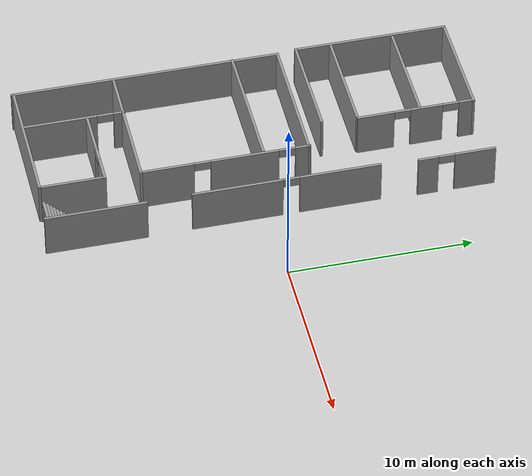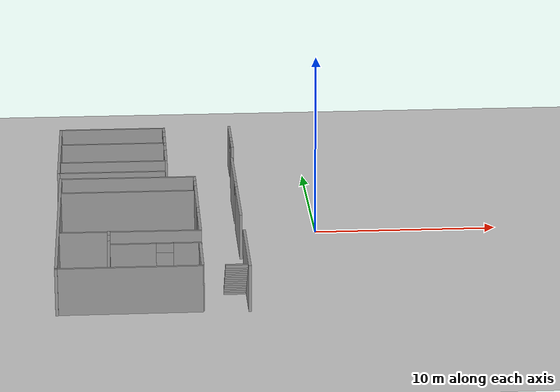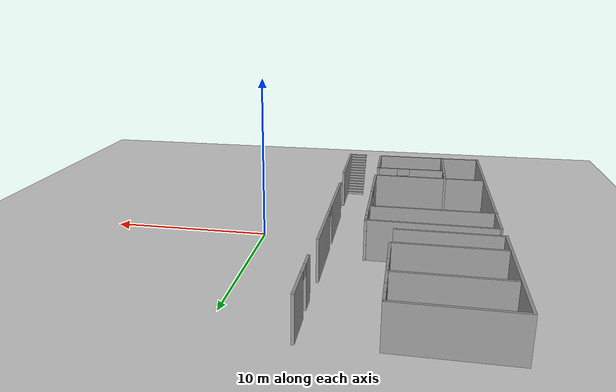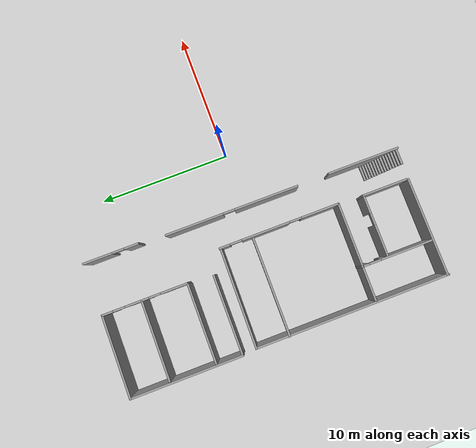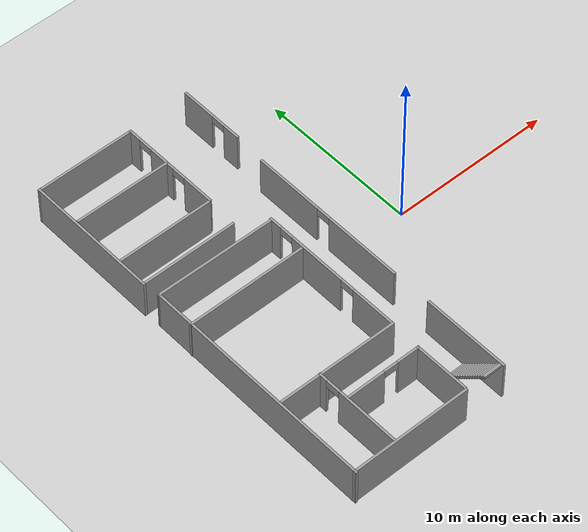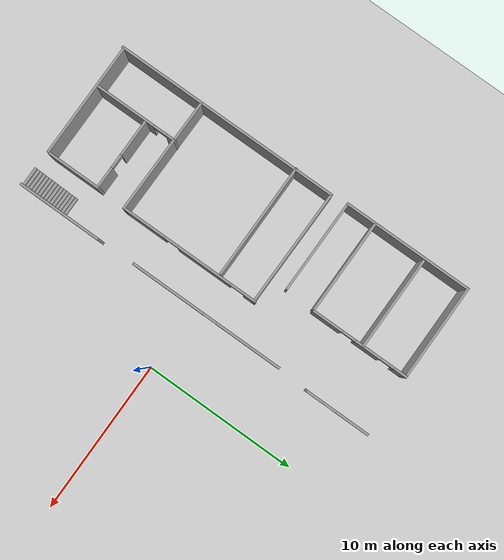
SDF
<sdf version="1.7">
 <world name="IUH">
  <model name="ground_plane">
   <static>1</static>
   <link name="link">
    <collision name="collision">
     <geometry><plane><normal>0 0 1</normal><size>100 100</size></plane></geometry>
     <surface><friction><ode><mu>100</mu><mu2>50</mu2></ode></friction></surface>
    </collision>
    <visual name="visual">
     <cast_shadows>0</cast_shadows>
     <geometry><plane><normal>0 0 1</normal><size>100 100</size></plane></geometry>
     <material>
      <script><uri>file://media/materials/scripts/gazebo.material</uri><name>Gazebo/Grey</name></script>
     </material>
    </visual>
   </link>
  </model>
  <model name="X7-IUH">
   <pose>-1.71813 0.153741 0 0 -0 0</pose>
   <link name="Stairs_2">
    <visual name="Stairs_2_Visual_0">
     <pose>-3.2544 -9.56392 0.083333 0 -0 0</pose>
     <geometry><box><size>1.15295 0.172153 0.166667</size></box></geometry>
     <material>
      <script><uri>file://media/materials/scripts/gazebo.material</uri><name>Gazebo/Grey</name></script>
      <ambient>1 1 1 1</ambient>
     </material>
     <meta><layer>0</layer></meta>
    </visual>
    <collision name="Stairs_2_Collision_0">
     <geometry><box><size>1.15295 0.172153 0.166667</size></box></geometry>
     <pose>-3.2544 -9.56392 0.083333 0 -0 0</pose>
    </collision>
    <visual name="Stairs_2_Visual_1">
     <pose>-3.2544 -9.73607 0.25 0 -0 0</pose>
     <geometry><box><size>1.15295 0.172153 0.166667</size></box></geometry>
     <material>
      <script><uri>file://media/materials/scripts/gazebo.material</uri><name>Gazebo/Grey</name></script>
      <ambient>1 1 1 1</ambient>
     </material>
     <meta><layer>0</layer></meta>
    </visual>
    <collision name="Stairs_2_Collision_1">
     <geometry><box><size>1.15295 0.172153 0.166667</size></box></geometry>
     <pose>-3.2544 -9.73607 0.25 0 -0 0</pose>
    </collision>
    <visual name="Stairs_2_Visual_2">
     <pose>-3.2544 -9.90822 0.416667 0 -0 0</pose>
     <geometry><box><size>1.15295 0.172153 0.166667</size></box></geometry>
     <material>
      <script><uri>file://media/materials/scripts/gazebo.material</uri><name>Gazebo/Grey</name></script>
      <ambient>1 1 1 1</ambient>
     </material>
     <meta><layer>0</layer></meta>
    </visual>
    <collision name="Stairs_2_Collision_2">
     <geometry><box><size>1.15295 0.172153 0.166667</size></box></geometry>
     <pose>-3.2544 -9.90822 0.416667 0 -0 0</pose>
    </collision>
    <visual name="Stairs_2_Visual_3">
     <pose>-3.2544 -10.0804 0.583333 0 -0 0</pose>
     <geometry><box><size>1.15295 0.172153 0.166667</size></box></geometry>
     <material>
      <script><uri>file://media/materials/scripts/gazebo.material</uri><name>Gazebo/Grey</name></script>
      <ambient>1 1 1 1</ambient>
     </material>
     <meta><layer>0</layer></meta>
    </visual>
    <collision name="Stairs_2_Collision_3">
     <geometry><box><size>1.15295 0.172153 0.166667</size></box></geometry>
     <pose>-3.2544 -10.0804 0.583333 0 -0 0</pose>
    </collision>
    <visual name="Stairs_2_Visual_4">
     <pose>-3.2544 -10.2525 0.75 0 -0 0</pose>
     <geometry><box><size>1.15295 0.172153 0.166667</size></box></geometry>
     <material>
      <script><uri>file://media/materials/scripts/gazebo.material</uri><name>Gazebo/Grey</name></script>
      <ambient>1 1 1 1</ambient>
     </material>
     <meta><layer>0</layer></meta>
    </visual>
    <collision name="Stairs_2_Collision_4">
     <geometry><box><size>1.15295 0.172153 0.166667</size></box></geometry>
     <pose>-3.2544 -10.2525 0.75 0 -0 0</pose>
    </collision>
    <visual name="Stairs_2_Visual_5">
     <pose>-3.2544 -10.4247 0.916667 0 -0 0</pose>
     <geometry><box><size>1.15295 0.172153 0.166667</size></box></geometry>
     <material>
      <script><uri>file://media/materials/scripts/gazebo.material</uri><name>Gazebo/Grey</name></script>
      <ambient>1 1 1 1</ambient>
     </material>
     <meta><layer>0</layer></meta>
    </visual>
    <collision name="Stairs_2_Collision_5">
     <geometry><box><size>1.15295 0.172153 0.166667</size></box></geometry>
     <pose>-3.2544 -10.4247 0.916667 0 -0 0</pose>
    </collision>
    <visual name="Stairs_2_Visual_6">
     <pose>-3.2544 -10.5968 1.08333 0 -0 0</pose>
     <geometry><box><size>1.15295 0.172153 0.166667</size></box></geometry>
     <material>
      <script><uri>file://media/materials/scripts/gazebo.material</uri><name>Gazebo/Grey</name></script>
      <ambient>1 1 1 1</ambient>
     </material>
     <meta><layer>0</layer></meta>
    </visual>
    <collision name="Stairs_2_Collision_6">
     <geometry><box><size>1.15295 0.172153 0.166667</size></box></geometry>
     <pose>-3.2544 -10.5968 1.08333 0 -0 0</pose>
    </collision>
    <visual name="Stairs_2_Visual_7">
     <pose>-3.2544 -10.769 1.25 0 -0 0</pose>
     <geometry><box><size>1.15295 0.172153 0.166667</size></box></geometry>
     <material>
      <script><uri>file://media/materials/scripts/gazebo.material</uri><name>Gazebo/Grey</name></script>
      <ambient>1 1 1 1</ambient>
     </material>
     <meta><layer>0</layer></meta>
    </visual>
    <collision name="Stairs_2_Collision_7">
     <geometry><box><size>1.15295 0.172153 0.166667</size></box></geometry>
     <pose>-3.2544 -10.769 1.25 0 -0 0</pose>
    </collision>
    <visual name="Stairs_2_Visual_8">
     <pose>-3.2544 -10.9411 1.41667 0 -0 0</pose>
     <geometry><box><size>1.15295 0.172153 0.166667</size></box></geometry>
     <material>
      <script><uri>file://media/materials/scripts/gazebo.material</uri><name>Gazebo/Grey</name></script>
      <ambient>1 1 1 1</ambient>
     </material>
     <meta><layer>0</layer></meta>
    </visual>
    <collision name="Stairs_2_Collision_8">
     <geometry><box><size>1.15295 0.172153 0.166667</size></box></geometry>
     <pose>-3.2544 -10.9411 1.41667 0 -0 0</pose>
    </collision>
    <visual name="Stairs_2_Visual_9">
     <pose>-3.2544 -11.1133 1.58333 0 -0 0</pose>
     <geometry><box><size>1.15295 0.172153 0.166667</size></box></geometry>
     <material>
      <script><uri>file://media/materials/scripts/gazebo.material</uri><name>Gazebo/Grey</name></script>
      <ambient>1 1 1 1</ambient>
     </material>
     <meta><layer>0</layer></meta>
    </visual>
    <collision name="Stairs_2_Collision_9">
     <geometry><box><size>1.15295 0.172153 0.166667</size></box></geometry>
     <pose>-3.2544 -11.1133 1.58333 0 -0 0</pose>
    </collision>
    <visual name="Stairs_2_Visual_10">
     <pose>-3.2544 -11.2854 1.75 0 -0 0</pose>
     <geometry><box><size>1.15295 0.172153 0.166667</size></box></geometry>
     <material>
      <script><uri>file://media/materials/scripts/gazebo.material</uri><name>Gazebo/Grey</name></script>
      <ambient>1 1 1 1</ambient>
     </material>
     <meta><layer>0</layer></meta>
    </visual>
    <collision name="Stairs_2_Collision_10">
     <geometry><box><size>1.15295 0.172153 0.166667</size></box></geometry>
     <pose>-3.2544 -11.2854 1.75 0 -0 0</pose>
    </collision>
    <visual name="Stairs_2_Visual_11">
     <pose>-3.2544 -11.4576 1.91667 0 -0 0</pose>
     <geometry><box><size>1.15295 0.172153 0.166667</size></box></geometry>
     <material>
      <script><uri>file://media/materials/scripts/gazebo.material</uri><name>Gazebo/Grey</name></script>
      <ambient>1 1 1 1</ambient>
     </material>
     <meta><layer>0</layer></meta>
    </visual>
    <collision name="Stairs_2_Collision_11">
     <geometry><box><size>1.15295 0.172153 0.166667</size></box></geometry>
     <pose>-3.2544 -11.4576 1.91667 0 -0 0</pose>
    </collision>
    <visual name="Stairs_2_Visual_12">
     <pose>-3.2544 -11.6298 2.08333 0 -0 0</pose>
     <geometry><box><size>1.15295 0.172153 0.166667</size></box></geometry>
     <material>
      <script><uri>file://media/materials/scripts/gazebo.material</uri><name>Gazebo/Grey</name></script>
      <ambient>1 1 1 1</ambient>
     </material>
     <meta><layer>0</layer></meta>
    </visual>
    <collision name="Stairs_2_Collision_12">
     <geometry><box><size>1.15295 0.172153 0.166667</size></box></geometry>
     <pose>-3.2544 -11.6298 2.08333 0 -0 0</pose>
    </collision>
    <visual name="Stairs_2_Visual_13">
     <pose>-3.2544 -11.8019 2.25 0 -0 0</pose>
     <geometry><box><size>1.15295 0.172153 0.166667</size></box></geometry>
     <material>
      <script><uri>file://media/materials/scripts/gazebo.material</uri><name>Gazebo/Grey</name></script>
      <ambient>1 1 1 1</ambient>
     </material>
     <meta><layer>0</layer></meta>
    </visual>
    <collision name="Stairs_2_Collision_13">
     <geometry><box><size>1.15295 0.172153 0.166667</size></box></geometry>
     <pose>-3.2544 -11.8019 2.25 0 -0 0</pose>
    </collision>
    <visual name="Stairs_2_Visual_14">
     <pose>-3.2544 -11.9741 2.41667 0 -0 0</pose>
     <geometry><box><size>1.15295 0.172153 0.166667</size></box></geometry>
     <material>
      <script><uri>file://media/materials/scripts/gazebo.material</uri><name>Gazebo/Grey</name></script>
      <ambient>1 1 1 1</ambient>
     </material>
     <meta><layer>0</layer></meta>
    </visual>
    <collision name="Stairs_2_Collision_14">
     <geometry><box><size>1.15295 0.172153 0.166667</size></box></geometry>
     <pose>-3.2544 -11.9741 2.41667 0 -0 0</pose>
    </collision>
   </link>
   <link name="Wall_11">
    <collision name="Wall_11_Collision">
     <geometry><box><size>7.5422 0.15 2.5</size></box></geometry>
     <pose>0 0 1.25 0 -0 0</pose>
    </collision>
    <visual name="Wall_11_Visual">
     <pose>0 0 1.25 0 -0 0</pose>
     <geometry><box><size>7.5422 0.15 2.5</size></box></geometry>
     <material>
      <script><uri>file://media/materials/scripts/gazebo.material</uri><name>Gazebo/Grey</name></script>
      <ambient>1 1 1 1</ambient>
     </material>
     <meta><layer>0</layer></meta>
    </visual>
    <pose>-8.59423 -6.52745 0 0 -0 3.13435</pose>
   </link>
   <link name="Wall_13">
    <collision name="Wall_13_Collision">
     <geometry><box><size>14.802 0.15 2.5</size></box></geometry>
     <pose>0 0 1.25 0 -0 0</pose>
    </collision>
    <visual name="Wall_13_Visual">
     <pose>0 0 1.25 0 -0 0</pose>
     <geometry><box><size>14.802 0.15 2.5</size></box></geometry>
     <material>
      <script><uri>file://media/materials/scripts/gazebo.material</uri><name>Gazebo/Grey</name></script>
      <ambient>1 1 1 1</ambient>
     </material>
     <meta><layer>0</layer></meta>
    </visual>
    <pose>-12.3813 -4.71947 0 0 -0 1.5708</pose>
   </link>
   <link name="Wall_15">
    <collision name="Wall_15_Collision">
     <geometry><box><size>7.63345 0.15 2.5</size></box></geometry>
     <pose>0 0 1.25 0 -0 0</pose>
    </collision>
    <visual name="Wall_15_Visual">
     <pose>0 0 1.25 0 -0 0</pose>
     <geometry><box><size>7.63345 0.15 2.5</size></box></geometry>
     <material>
      <script><uri>file://media/materials/scripts/gazebo.material</uri><name>Gazebo/Grey</name></script>
      <ambient>1 1 1 1</ambient>
     </material>
     <meta><layer>0</layer></meta>
    </visual>
    <pose>-8.63991 2.57615 0 0 -0 3.13348</pose>
   </link>
   <link name="Wall_17">
    <collision name="Wall_17_Collision">
     <geometry><box><size>7.5 0.15 2.5</size></box></geometry>
     <pose>0 0 1.25 0 -0 0</pose>
    </collision>
    <visual name="Wall_17_Visual">
     <pose>0 0 1.25 0 -0 0</pose>
     <geometry><box><size>7.5 0.15 2.5</size></box></geometry>
     <material>
      <script><uri>file://media/materials/scripts/gazebo.material</uri><name>Gazebo/Grey</name></script>
      <ambient>1 1 1 1</ambient>
     </material>
     <meta><layer>0</layer></meta>
    </visual>
    <pose>-8.74645 0.104362 0 0 -0 3.14159</pose>
   </link>
   <link name="Wall_21">
    <collision name="Wall_21_Collision">
     <geometry><box><size>6.02363 0.15 2.5</size></box></geometry>
     <pose>0 0 1.25 0 -0 0</pose>
    </collision>
    <visual name="Wall_21_Visual">
     <pose>0 0 1.25 0 -0 0</pose>
     <geometry><box><size>6.02363 0.15 2.5</size></box></geometry>
     <material>
      <script><uri>file://media/materials/scripts/gazebo.material</uri><name>Gazebo/Grey</name></script>
      <ambient>1 1 1 1</ambient>
     </material>
     <meta><layer>0</layer></meta>
    </visual>
    <pose>-9.46811 5.60559 0 0 -0 0</pose>
   </link>
   <link name="Wall_23">
    <pose>-6.40805 8.84459 0 0 -0 1.5708</pose>
    <visual name="Wall_23_Visual_0">
     <pose>-2.22793 0 1.25 0 -0 0</pose>
     <geometry><box><size>2.04414 0.15 2.5</size></box></geometry>
     <material>
      <script><uri>file://media/materials/scripts/gazebo.material</uri><name>Gazebo/Grey</name></script>
      <ambient>1 1 1 1</ambient>
     </material>
     <meta><layer>0</layer></meta>
    </visual>
    <collision name="Wall_23_Collision_0">
     <geometry><box><size>2.04414 0.15 2.5</size></box></geometry>
     <pose>-2.22793 0 1.25 0 -0 0</pose>
    </collision>
    <visual name="Wall_23_Visual_1">
     <pose>0.582017 0 1.25 0 -0 0</pose>
     <geometry><box><size>1.77574 0.15 2.5</size></box></geometry>
     <material>
      <script><uri>file://media/materials/scripts/gazebo.material</uri><name>Gazebo/Grey</name></script>
      <ambient>1 1 1 1</ambient>
     </material>
     <meta><layer>0</layer></meta>
    </visual>
    <collision name="Wall_23_Collision_1">
     <geometry><box><size>1.77574 0.15 2.5</size></box></geometry>
     <pose>0.582017 0 1.25 0 -0 0</pose>
    </collision>
    <visual name="Wall_23_Visual_2">
     <pose>2.80994 0 1.25 0 -0 0</pose>
     <geometry><box><size>0.880111 0.15 2.5</size></box></geometry>
     <material>
      <script><uri>file://media/materials/scripts/gazebo.material</uri><name>Gazebo/Grey</name></script>
      <ambient>1 1 1 1</ambient>
     </material>
     <meta><layer>0</layer></meta>
    </visual>
    <collision name="Wall_23_Collision_2">
     <geometry><box><size>0.880111 0.15 2.5</size></box></geometry>
     <pose>2.80994 0 1.25 0 -0 0</pose>
    </collision>
    <visual name="Wall_23_Visual_3">
     <pose>-0.755856 0 2.25 0 -0 0</pose>
     <geometry><box><size>0.9 0.15 0.5</size></box></geometry>
     <material>
      <script><uri>file://media/materials/scripts/gazebo.material</uri><name>Gazebo/Grey</name></script>
      <ambient>1 1 1 1</ambient>
     </material>
     <meta><layer>0</layer></meta>
    </visual>
    <collision name="Wall_23_Collision_3">
     <geometry><box><size>0.9 0.15 0.5</size></box></geometry>
     <pose>-0.755856 0 2.25 0 -0 0</pose>
    </collision>
    <visual name="Wall_23_Visual_4">
     <pose>1.91989 0 2.25 0 -0 0</pose>
     <geometry><box><size>0.9 0.15 0.5</size></box></geometry>
     <material>
      <script><uri>file://media/materials/scripts/gazebo.material</uri><name>Gazebo/Grey</name></script>
      <ambient>1 1 1 1</ambient>
     </material>
     <meta><layer>0</layer></meta>
    </visual>
    <collision name="Wall_23_Collision_4">
     <geometry><box><size>0.9 0.15 0.5</size></box></geometry>
     <pose>1.91989 0 2.25 0 -0 0</pose>
    </collision>
   </link>
   <link name="Wall_33">
    <collision name="Wall_33_Collision">
     <geometry><box><size>7.5 0.15 2.5</size></box></geometry>
     <pose>0 0 1.25 0 -0 0</pose>
    </collision>
    <visual name="Wall_33_Visual">
     <pose>0 0 1.25 0 -0 0</pose>
     <geometry><box><size>7.5 0.15 2.5</size></box></geometry>
     <material>
      <script><uri>file://media/materials/scripts/gazebo.material</uri><name>Gazebo/Grey</name></script>
      <ambient>1 1 1 1</ambient>
     </material>
     <meta><layer>0</layer></meta>
    </visual>
    <pose>-8.7063 -11.9747 0 0 -0 0</pose>
   </link>
   <link name="Wall_35">
    <collision name="Wall_35_Collision">
     <geometry><box><size>5.5 0.15 2.5</size></box></geometry>
     <pose>0 0 1.25 0 -0 0</pose>
    </collision>
    <visual name="Wall_35_Visual">
     <pose>0 0 1.25 0 -0 0</pose>
     <geometry><box><size>5.5 0.15 2.5</size></box></geometry>
     <material>
      <script><uri>file://media/materials/scripts/gazebo.material</uri><name>Gazebo/Grey</name></script>
      <ambient>1 1 1 1</ambient>
     </material>
     <meta><layer>0</layer></meta>
    </visual>
    <pose>-2.59195 -9.43151 0 0 -0 -1.5708</pose>
   </link>
   <link name="Wall_47">
    <pose>-2.49793 10.0562 0 0 -0 1.5708</pose>
    <visual name="Wall_47_Visual_0">
     <pose>-1.56955 0 1.25 0 -0 0</pose>
     <geometry><box><size>1.1109 0.15 2.5</size></box></geometry>
     <material>
      <script><uri>file://media/materials/scripts/gazebo.material</uri><name>Gazebo/Grey</name></script>
      <ambient>1 1 1 1</ambient>
     </material>
     <meta><layer>0</layer></meta>
    </visual>
    <collision name="Wall_47_Collision_0">
     <geometry><box><size>1.1109 0.15 2.5</size></box></geometry>
     <pose>-1.56955 0 1.25 0 -0 0</pose>
    </collision>
    <visual name="Wall_47_Visual_1">
     <pose>1.00545 0 1.25 0 -0 0</pose>
     <geometry><box><size>2.2391 0.15 2.5</size></box></geometry>
     <material>
      <script><uri>file://media/materials/scripts/gazebo.material</uri><name>Gazebo/Grey</name></script>
      <ambient>1 1 1 1</ambient>
     </material>
     <meta><layer>0</layer></meta>
    </visual>
    <collision name="Wall_47_Collision_1">
     <geometry><box><size>2.2391 0.15 2.5</size></box></geometry>
     <pose>1.00545 0 1.25 0 -0 0</pose>
    </collision>
    <visual name="Wall_47_Visual_2">
     <pose>-0.564102 0 2.25 0 -0 0</pose>
     <geometry><box><size>0.9 0.15 0.5</size></box></geometry>
     <material>
      <script><uri>file://media/materials/scripts/gazebo.material</uri><name>Gazebo/Grey</name></script>
      <ambient>1 1 1 1</ambient>
     </material>
     <meta><layer>0</layer></meta>
    </visual>
    <collision name="Wall_47_Collision_2">
     <geometry><box><size>0.9 0.15 0.5</size></box></geometry>
     <pose>-0.564102 0 2.25 0 -0 0</pose>
    </collision>
   </link>
   <link name="Wall_57">
    <pose>-2.63944 0.833465 0 0 -0 -1.5708</pose>
    <visual name="Wall_57_Visual_0">
     <pose>-2.90676 0 1.25 0 -0 0</pose>
     <geometry><box><size>4.43648 0.15 2.5</size></box></geometry>
     <material>
      <script><uri>file://media/materials/scripts/gazebo.material</uri><name>Gazebo/Grey</name></script>
      <ambient>1 1 1 1</ambient>
     </material>
     <meta><layer>0</layer></meta>
    </visual>
    <collision name="Wall_57_Collision_0">
     <geometry><box><size>4.43648 0.15 2.5</size></box></geometry>
     <pose>-2.90676 0 1.25 0 -0 0</pose>
    </collision>
    <visual name="Wall_57_Visual_1">
     <pose>2.66824 0 1.25 0 -0 0</pose>
     <geometry><box><size>4.91352 0.15 2.5</size></box></geometry>
     <material>
      <script><uri>file://media/materials/scripts/gazebo.material</uri><name>Gazebo/Grey</name></script>
      <ambient>1 1 1 1</ambient>
     </material>
     <meta><layer>0</layer></meta>
    </visual>
    <collision name="Wall_57_Collision_1">
     <geometry><box><size>4.91352 0.15 2.5</size></box></geometry>
     <pose>2.66824 0 1.25 0 -0 0</pose>
    </collision>
    <visual name="Wall_57_Visual_2">
     <pose>-0.23852 0 2.25 0 -0 0</pose>
     <geometry><box><size>0.9 0.15 0.5</size></box></geometry>
     <material>
      <script><uri>file://media/materials/scripts/gazebo.material</uri><name>Gazebo/Grey</name></script>
      <ambient>1 1 1 1</ambient>
     </material>
     <meta><layer>0</layer></meta>
    </visual>
    <collision name="Wall_57_Collision_2">
     <geometry><box><size>0.9 0.15 0.5</size></box></geometry>
     <pose>-0.23852 0 2.25 0 -0 0</pose>
    </collision>
   </link>
   <link name="Wall_75">
    <collision name="Wall_75_Collision">
     <geometry><box><size>3.5 0.15 2.5</size></box></geometry>
     <pose>0 0 1.25 0 -0 0</pose>
    </collision>
    <visual name="Wall_75_Visual">
     <pose>0 0 1.25 0 -0 0</pose>
     <geometry><box><size>3.5 0.15 2.5</size></box></geometry>
     <material>
      <script><uri>file://media/materials/scripts/gazebo.material</uri><name>Gazebo/Grey</name></script>
      <ambient>1 1 1 1</ambient>
     </material>
     <meta><layer>0</layer></meta>
    </visual>
    <pose>-4.97443 -10.1552 0 0 -0 -1.5708</pose>
   </link>
   <link name="Wall_77">
    <pose>-7.27443 -8.48022 0 0 -0 3.14159</pose>
    <visual name="Wall_77_Visual_0">
     <pose>-1.64266 0 1.25 0 -0 0</pose>
     <geometry><box><size>1.46468 0.15 2.5</size></box></geometry>
     <material>
      <script><uri>file://media/materials/scripts/gazebo.material</uri><name>Gazebo/Grey</name></script>
      <ambient>1 1 1 1</ambient>
     </material>
     <meta><layer>0</layer></meta>
    </visual>
    <collision name="Wall_77_Collision_0">
     <geometry><box><size>1.46468 0.15 2.5</size></box></geometry>
     <pose>-1.64266 0 1.25 0 -0 0</pose>
    </collision>
    <visual name="Wall_77_Visual_1">
     <pose>1.18234 0 1.25 0 -0 0</pose>
     <geometry><box><size>2.38532 0.15 2.5</size></box></geometry>
     <material>
      <script><uri>file://media/materials/scripts/gazebo.material</uri><name>Gazebo/Grey</name></script>
      <ambient>1 1 1 1</ambient>
     </material>
     <meta><layer>0</layer></meta>
    </visual>
    <collision name="Wall_77_Collision_1">
     <geometry><box><size>2.38532 0.15 2.5</size></box></geometry>
     <pose>1.18234 0 1.25 0 -0 0</pose>
    </collision>
    <visual name="Wall_77_Visual_2">
     <pose>-0.460317 0 2.25 0 -0 0</pose>
     <geometry><box><size>0.9 0.15 0.5</size></box></geometry>
     <material>
      <script><uri>file://media/materials/scripts/gazebo.material</uri><name>Gazebo/Grey</name></script>
      <ambient>1 1 1 1</ambient>
     </material>
     <meta><layer>0</layer></meta>
    </visual>
    <collision name="Wall_77_Collision_2">
     <geometry><box><size>0.9 0.15 0.5</size></box></geometry>
     <pose>-0.460317 0 2.25 0 -0 0</pose>
    </collision>
   </link>
   <link name="Wall_79">
    <pose>-9.71515 -9.17402 0 0 -0 -1.5708</pose>
    <visual name="Wall_79_Visual_0">
     <pose>-2.4422 0 1.25 0 -0 0</pose>
     <geometry><box><size>0.615599 0.15 2.5</size></box></geometry>
     <material>
      <script><uri>file://media/materials/scripts/gazebo.material</uri><name>Gazebo/Grey</name></script>
      <ambient>1 1 1 1</ambient>
     </material>
     <meta><layer>0</layer></meta>
    </visual>
    <collision name="Wall_79_Collision_0">
     <geometry><box><size>0.615599 0.15 2.5</size></box></geometry>
     <pose>-2.4422 0 1.25 0 -0 0</pose>
    </collision>
    <visual name="Wall_79_Visual_1">
     <pose>0.757799 0 1.25 0 -0 0</pose>
     <geometry><box><size>3.9844 0.15 2.5</size></box></geometry>
     <material>
      <script><uri>file://media/materials/scripts/gazebo.material</uri><name>Gazebo/Grey</name></script>
      <ambient>1 1 1 1</ambient>
     </material>
     <meta><layer>0</layer></meta>
    </visual>
    <collision name="Wall_79_Collision_1">
     <geometry><box><size>3.9844 0.15 2.5</size></box></geometry>
     <pose>0.757799 0 1.25 0 -0 0</pose>
    </collision>
    <visual name="Wall_79_Visual_2">
     <pose>-1.6844 0 2.25 0 -0 0</pose>
     <geometry><box><size>0.9 0.15 0.5</size></box></geometry>
     <material>
      <script><uri>file://media/materials/scripts/gazebo.material</uri><name>Gazebo/Grey</name></script>
      <ambient>1 1 1 1</ambient>
     </material>
     <meta><layer>0</layer></meta>
    </visual>
    <collision name="Wall_79_Collision_2">
     <geometry><box><size>0.9 0.15 0.5</size></box></geometry>
     <pose>-1.6844 0 2.25 0 -0 0</pose>
    </collision>
   </link>
   <link name="Wall_83">
    <collision name="Wall_83_Collision">
     <geometry><box><size>6.25 0.15 2.5</size></box></geometry>
     <pose>0 0 1.25 0 -0 0</pose>
    </collision>
    <visual name="Wall_83_Visual">
     <pose>0 0 1.25 0 -0 0</pose>
     <geometry><box><size>6.25 0.15 2.5</size></box></geometry>
     <material>
      <script><uri>file://media/materials/scripts/gazebo.material</uri><name>Gazebo/Grey</name></script>
      <ambient>1 1 1 1</ambient>
     </material>
     <meta><layer>0</layer></meta>
    </visual>
    <pose>-9.45805 12.0196 0 0 -0 3.14159</pose>
   </link>
   <link name="Wall_85">
    <collision name="Wall_85_Collision">
     <geometry><box><size>6 0.15 2.5</size></box></geometry>
     <pose>0 0 1.25 0 -0 0</pose>
    </collision>
    <visual name="Wall_85_Visual">
     <pose>0 0 1.25 0 -0 0</pose>
     <geometry><box><size>6 0.15 2.5</size></box></geometry>
     <material>
      <script><uri>file://media/materials/scripts/gazebo.material</uri><name>Gazebo/Grey</name></script>
      <ambient>1 1 1 1</ambient>
     </material>
     <meta><layer>0</layer></meta>
    </visual>
    <pose>-9.40696 9.06332 0 0 -0 3.14159</pose>
   </link>
   <link name="Wall_87">
    <collision name="Wall_87_Collision">
     <geometry><box><size>6 0.15 2.5</size></box></geometry>
     <pose>0 0 1.25 0 -0 0</pose>
    </collision>
    <visual name="Wall_87_Visual">
     <pose>0 0 1.25 0 -0 0</pose>
     <geometry><box><size>6 0.15 2.5</size></box></geometry>
     <material>
      <script><uri>file://media/materials/scripts/gazebo.material</uri><name>Gazebo/Grey</name></script>
      <ambient>1 1 1 1</ambient>
     </material>
     <meta><layer>0</layer></meta>
    </visual>
    <pose>-9.50119 3.66967 0 0 -0 3.14159</pose>
   </link>
   <link name="Wall_9">
    <pose>-4.89852 -1.9507 0 0 -0 -1.5708</pose>
    <visual name="Wall_9_Visual_0">
     <pose>-4.19991 0 1.25 0 -0 0</pose>
     <geometry><box><size>0.850191 0.15 2.5</size></box></geometry>
     <material>
      <script><uri>file://media/materials/scripts/gazebo.material</uri><name>Gazebo/Grey</name></script>
      <ambient>1 1 1 1</ambient>
     </material>
     <meta><layer>0</layer></meta>
    </visual>
    <collision name="Wall_9_Collision_0">
     <geometry><box><size>0.850191 0.15 2.5</size></box></geometry>
     <pose>-4.19991 0 1.25 0 -0 0</pose>
    </collision>
    <visual name="Wall_9_Visual_1">
     <pose>-1.0242 0 1.25 0 -0 0</pose>
     <geometry><box><size>3.70121 0.15 2.5</size></box></geometry>
     <material>
      <script><uri>file://media/materials/scripts/gazebo.material</uri><name>Gazebo/Grey</name></script>
      <ambient>1 1 1 1</ambient>
     </material>
     <meta><layer>0</layer></meta>
    </visual>
    <collision name="Wall_9_Collision_1">
     <geometry><box><size>3.70121 0.15 2.5</size></box></geometry>
     <pose>-1.0242 0 1.25 0 -0 0</pose>
    </collision>
    <visual name="Wall_9_Visual_2">
     <pose>3.1757 0 1.25 0 -0 0</pose>
     <geometry><box><size>2.89859 0.15 2.5</size></box></geometry>
     <material>
      <script><uri>file://media/materials/scripts/gazebo.material</uri><name>Gazebo/Grey</name></script>
      <ambient>1 1 1 1</ambient>
     </material>
     <meta><layer>0</layer></meta>
    </visual>
    <collision name="Wall_9_Collision_2">
     <geometry><box><size>2.89859 0.15 2.5</size></box></geometry>
     <pose>3.1757 0 1.25 0 -0 0</pose>
    </collision>
    <visual name="Wall_9_Visual_3">
     <pose>-3.32481 0 2.25 0 -0 0</pose>
     <geometry><box><size>0.9 0.15 0.5</size></box></geometry>
     <material>
      <script><uri>file://media/materials/scripts/gazebo.material</uri><name>Gazebo/Grey</name></script>
      <ambient>1 1 1 1</ambient>
     </material>
     <meta><layer>0</layer></meta>
    </visual>
    <collision name="Wall_9_Collision_3">
     <geometry><box><size>0.9 0.15 0.5</size></box></geometry>
     <pose>-3.32481 0 2.25 0 -0 0</pose>
    </collision>
    <visual name="Wall_9_Visual_4">
     <pose>1.27641 0 2.25 0 -0 0</pose>
     <geometry><box><size>0.9 0.15 0.5</size></box></geometry>
     <material>
      <script><uri>file://media/materials/scripts/gazebo.material</uri><name>Gazebo/Grey</name></script>
      <ambient>1 1 1 1</ambient>
     </material>
     <meta><layer>0</layer></meta>
    </visual>
    <collision name="Wall_9_Collision_4">
     <geometry><box><size>0.9 0.15 0.5</size></box></geometry>
     <pose>1.27641 0 2.25 0 -0 0</pose>
    </collision>
   </link>
   <link name="Wall_92">
    <collision name="Wall_92_Collision">
     <geometry><box><size>8.5 0.15 2.5</size></box></geometry>
     <pose>0 0 1.25 0 -0 0</pose>
    </collision>
    <visual name="Wall_92_Visual">
     <pose>0 0 1.25 0 -0 0</pose>
     <geometry><box><size>8.5 0.15 2.5</size></box></geometry>
     <material>
      <script><uri>file://media/materials/scripts/gazebo.material</uri><name>Gazebo/Grey</name></script>
      <ambient>1 1 1 1</ambient>
     </material>
     <meta><layer>0</layer></meta>
    </visual>
    <pose>-12.508 7.84459 0 0 -0 -1.5708</pose>
   </link>
   <static>1</static>
  </model>
 </world>
</sdf>
